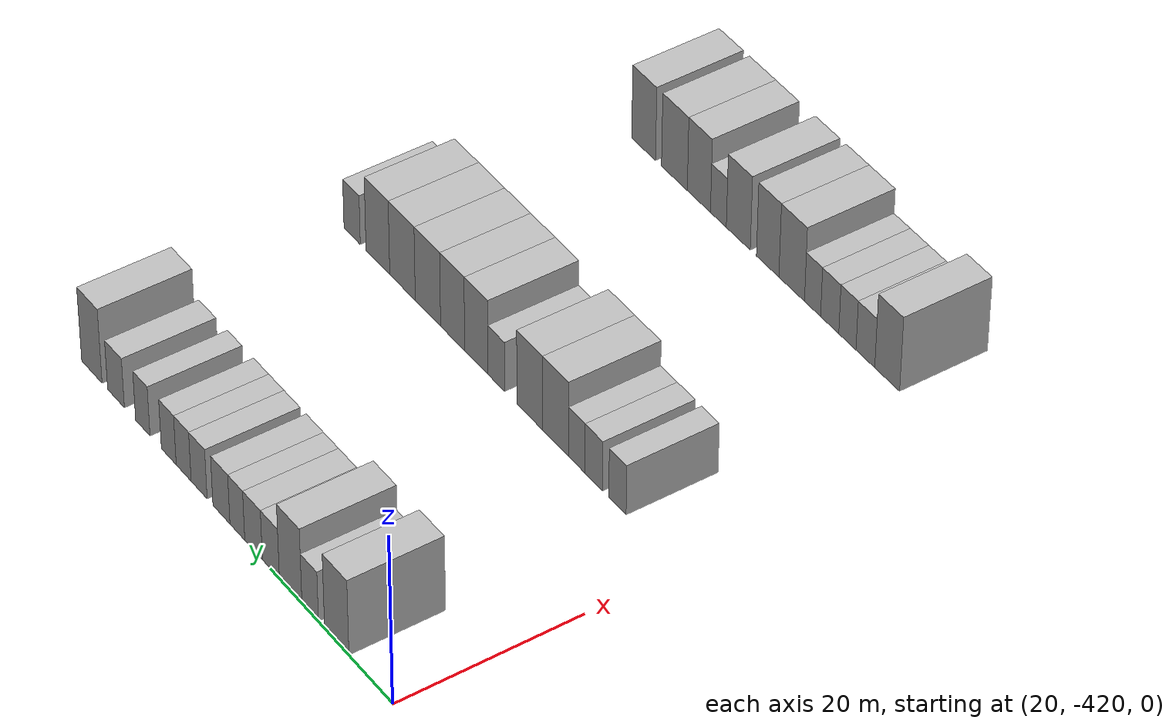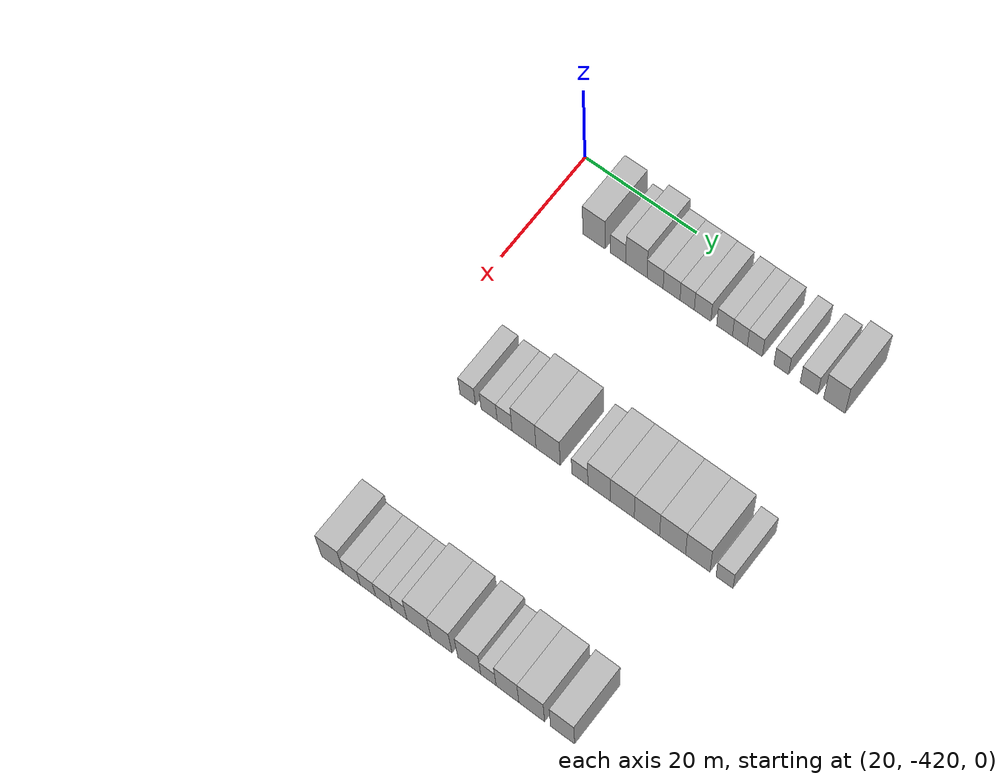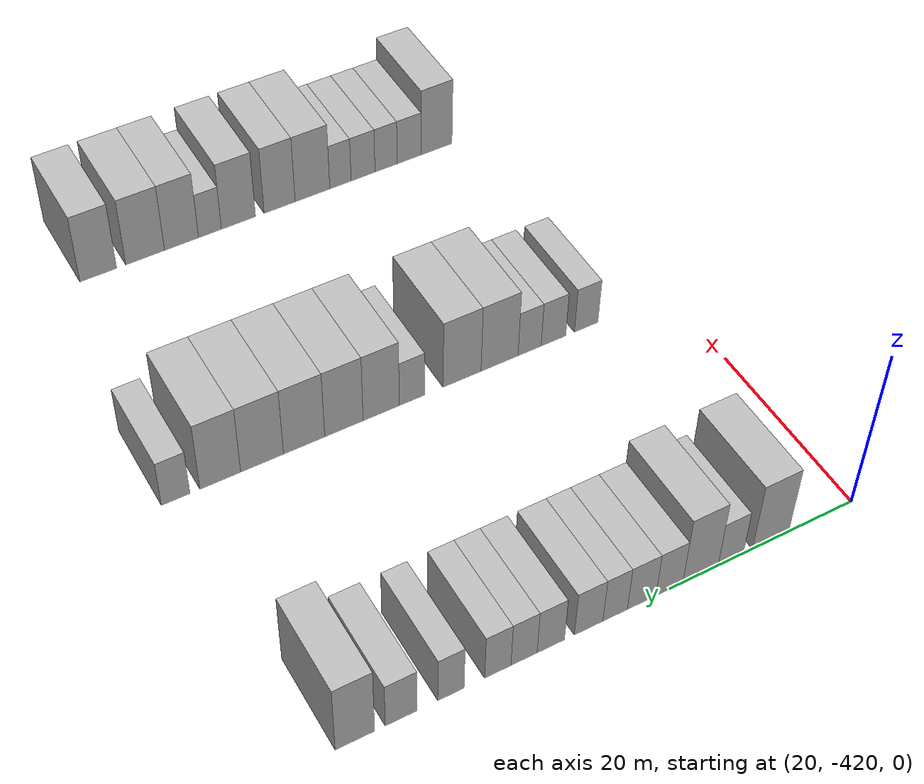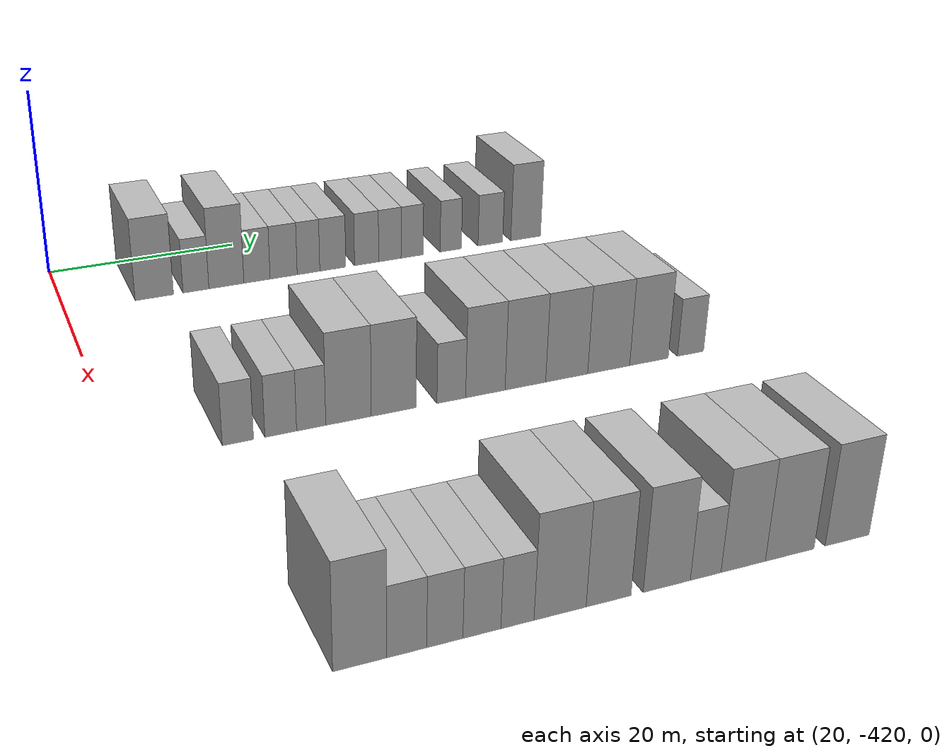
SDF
<sdf version="1.6">
 <world name="default">
  <model name="building_15">
   <static>1</static>
   <pose>25.0000 -410.9005 0 0.000000 0.000000 0.000000</pose>
   <link name="link">
    <pose>0 0 4.50 0 0 0</pose>
    <collision name="collision"><geometry><box><size>10.0000 3.9791 9.0000</size></box></geometry></collision>
    <visual name="visual">
     <cast_shadows>0</cast_shadows>
     <geometry><box><size>10.0000 3.9791 9.0000</size></box></geometry>
     <material>
      <script>
       <uri>model://HANNAS_wall/materials/scripts</uri>
       <uri>model://HANNAS_wall/materials/textures</uri>
       <name>vrc/HANNAS_wall</name>
      </script>
     </material>
    </visual>
   </link>
  </model>
  <model name="building_16">
   <static>1</static>
   <pose>25.0000 -406.5454 0 0.000000 0.000000 0.000000</pose>
   <link name="link">
    <pose>0 0 3.00 0 0 0</pose>
    <collision name="collision"><geometry><box><size>10.0000 2.7313 6.0000</size></box></geometry></collision>
    <visual name="visual">
     <cast_shadows>0</cast_shadows>
     <geometry><box><size>10.0000 2.7313 6.0000</size></box></geometry>
     <material>
      <script>
       <uri>model://HANNAS_wall/materials/scripts</uri>
       <uri>model://HANNAS_wall/materials/textures</uri>
       <name>vrc/HANNAS_wall</name>
      </script>
     </material>
    </visual>
   </link>
  </model>
  <model name="building_17">
   <static>1</static>
   <pose>25.0000 -403.3031 0 0.000000 0.000000 0.000000</pose>
   <link name="link">
    <pose>0 0 4.50 0 0 0</pose>
    <collision name="collision"><geometry><box><size>10.0000 3.7533 9.0000</size></box></geometry></collision>
    <visual name="visual">
     <cast_shadows>0</cast_shadows>
     <geometry><box><size>10.0000 3.7533 9.0000</size></box></geometry>
     <material>
      <script>
       <uri>model://HANNAS_wall/materials/scripts</uri>
       <uri>model://HANNAS_wall/materials/textures</uri>
       <name>vrc/HANNAS_wall</name>
      </script>
     </material>
    </visual>
   </link>
  </model>
  <model name="building_18">
   <static>1</static>
   <pose>25.0000 -400.0018 0 0.000000 0.000000 0.000000</pose>
   <link name="link">
    <pose>0 0 3.00 0 0 0</pose>
    <collision name="collision"><geometry><box><size>10.0000 2.8493 6.0000</size></box></geometry></collision>
    <visual name="visual">
     <cast_shadows>0</cast_shadows>
     <geometry><box><size>10.0000 2.8493 6.0000</size></box></geometry>
     <material>
      <script>
       <uri>model://HANNAS_wall/materials/scripts</uri>
       <uri>model://HANNAS_wall/materials/textures</uri>
       <name>vrc/HANNAS_wall</name>
      </script>
     </material>
    </visual>
   </link>
  </model>
  <model name="building_19">
   <static>1</static>
   <pose>25.0000 -397.0880 0 0.000000 0.000000 0.000000</pose>
   <link name="link">
    <pose>0 0 3.00 0 0 0</pose>
    <collision name="collision"><geometry><box><size>10.0000 2.9783 6.0000</size></box></geometry></collision>
    <visual name="visual">
     <cast_shadows>0</cast_shadows>
     <geometry><box><size>10.0000 2.9783 6.0000</size></box></geometry>
     <material>
      <script>
       <uri>model://HANNAS_wall/materials/scripts</uri>
       <uri>model://HANNAS_wall/materials/textures</uri>
       <name>vrc/HANNAS_wall</name>
      </script>
     </material>
    </visual>
   </link>
  </model>
  <model name="building_20">
   <static>1</static>
   <pose>25.0000 -394.3391 0 0.000000 0.000000 0.000000</pose>
   <link name="link">
    <pose>0 0 3.00 0 0 0</pose>
    <collision name="collision"><geometry><box><size>10.0000 2.5194 6.0000</size></box></geometry></collision>
    <visual name="visual">
     <cast_shadows>0</cast_shadows>
     <geometry><box><size>10.0000 2.5194 6.0000</size></box></geometry>
     <material>
      <script>
       <uri>model://HANNAS_wall/materials/scripts</uri>
       <uri>model://HANNAS_wall/materials/textures</uri>
       <name>vrc/HANNAS_wall</name>
      </script>
     </material>
    </visual>
   </link>
  </model>
  <model name="building_21">
   <static>1</static>
   <pose>25.0000 -391.6232 0 0.000000 0.000000 0.000000</pose>
   <link name="link">
    <pose>0 0 3.00 0 0 0</pose>
    <collision name="collision"><geometry><box><size>10.0000 2.9125 6.0000</size></box></geometry></collision>
    <visual name="visual">
     <cast_shadows>0</cast_shadows>
     <geometry><box><size>10.0000 2.9125 6.0000</size></box></geometry>
     <material>
      <script>
       <uri>model://HANNAS_wall/materials/scripts</uri>
       <uri>model://HANNAS_wall/materials/textures</uri>
       <name>vrc/HANNAS_wall</name>
      </script>
     </material>
    </visual>
   </link>
  </model>
  <model name="building_22">
   <static>1</static>
   <pose>25.0000 -387.7908 0 0.000000 0.000000 0.000000</pose>
   <link name="link">
    <pose>0 0 3.00 0 0 0</pose>
    <collision name="collision"><geometry><box><size>10.0000 2.7523 6.0000</size></box></geometry></collision>
    <visual name="visual">
     <cast_shadows>0</cast_shadows>
     <geometry><box><size>10.0000 2.7523 6.0000</size></box></geometry>
     <material>
      <script>
       <uri>model://HANNAS_wall/materials/scripts</uri>
       <uri>model://HANNAS_wall/materials/textures</uri>
       <name>vrc/HANNAS_wall</name>
      </script>
     </material>
    </visual>
   </link>
  </model>
  <model name="building_23">
   <static>1</static>
   <pose>25.0000 -385.1148 0 0.000000 0.000000 0.000000</pose>
   <link name="link">
    <pose>0 0 3.00 0 0 0</pose>
    <collision name="collision"><geometry><box><size>10.0000 2.5996 6.0000</size></box></geometry></collision>
    <visual name="visual">
     <cast_shadows>0</cast_shadows>
     <geometry><box><size>10.0000 2.5996 6.0000</size></box></geometry>
     <material>
      <script>
       <uri>model://HANNAS_wall/materials/scripts</uri>
       <uri>model://HANNAS_wall/materials/textures</uri>
       <name>vrc/HANNAS_wall</name>
      </script>
     </material>
    </visual>
   </link>
  </model>
  <model name="building_24">
   <static>1</static>
   <pose>25.0000 -382.5200 0 0.000000 0.000000 0.000000</pose>
   <link name="link">
    <pose>0 0 3.00 0 0 0</pose>
    <collision name="collision"><geometry><box><size>10.0000 2.5900 6.0000</size></box></geometry></collision>
    <visual name="visual">
     <cast_shadows>0</cast_shadows>
     <geometry><box><size>10.0000 2.5900 6.0000</size></box></geometry>
     <material>
      <script>
       <uri>model://HANNAS_wall/materials/scripts</uri>
       <uri>model://HANNAS_wall/materials/textures</uri>
       <name>vrc/HANNAS_wall</name>
      </script>
     </material>
    </visual>
   </link>
  </model>
  <model name="building_25">
   <static>1</static>
   <pose>25.0000 -377.9569 0 0.000000 0.000000 0.000000</pose>
   <link name="link">
    <pose>0 0 3.00 0 0 0</pose>
    <collision name="collision"><geometry><box><size>10.0000 2.5362 6.0000</size></box></geometry></collision>
    <visual name="visual">
     <cast_shadows>0</cast_shadows>
     <geometry><box><size>10.0000 2.5362 6.0000</size></box></geometry>
     <material>
      <script>
       <uri>model://HANNAS_wall/materials/scripts</uri>
       <uri>model://HANNAS_wall/materials/textures</uri>
       <name>vrc/HANNAS_wall</name>
      </script>
     </material>
    </visual>
   </link>
  </model>
  <model name="building_26">
   <static>1</static>
   <pose>25.0000 -373.1911 0 0.000000 0.000000 0.000000</pose>
   <link name="link">
    <pose>0 0 3.00 0 0 0</pose>
    <collision name="collision"><geometry><box><size>10.0000 2.9954 6.0000</size></box></geometry></collision>
    <visual name="visual">
     <cast_shadows>0</cast_shadows>
     <geometry><box><size>10.0000 2.9954 6.0000</size></box></geometry>
     <material>
      <script>
       <uri>model://HANNAS_wall/materials/scripts</uri>
       <uri>model://HANNAS_wall/materials/textures</uri>
       <name>vrc/HANNAS_wall</name>
      </script>
     </material>
    </visual>
   </link>
  </model>
  <model name="building_27">
   <static>1</static>
   <pose>25.0000 -368.8588 0 0.000000 0.000000 0.000000</pose>
   <link name="link">
    <pose>0 0 4.50 0 0 0</pose>
    <collision name="collision"><geometry><box><size>10.0000 3.6692 9.0000</size></box></geometry></collision>
    <visual name="visual">
     <cast_shadows>0</cast_shadows>
     <geometry><box><size>10.0000 3.6692 9.0000</size></box></geometry>
     <material>
      <script>
       <uri>model://HANNAS_wall/materials/scripts</uri>
       <uri>model://HANNAS_wall/materials/textures</uri>
       <name>vrc/HANNAS_wall</name>
      </script>
     </material>
    </visual>
   </link>
  </model>
  <model name="building_252">
   <static>1</static>
   <pose>55.0000 -410.2727 0 0.000000 0.000000 0.000000</pose>
   <link name="link">
    <pose>0 0 3.00 0 0 0</pose>
    <collision name="collision"><geometry><box><size>10.0000 2.7428 6.0000</size></box></geometry></collision>
    <visual name="visual">
     <cast_shadows>0</cast_shadows>
     <geometry><box><size>10.0000 2.7428 6.0000</size></box></geometry>
     <material>
      <script>
       <uri>model://HANNAS_wall/materials/scripts</uri>
       <uri>model://HANNAS_wall/materials/textures</uri>
       <name>vrc/HANNAS_wall</name>
      </script>
     </material>
    </visual>
   </link>
  </model>
  <model name="building_253">
   <static>1</static>
   <pose>55.0000 -406.4857 0 0.000000 0.000000 0.000000</pose>
   <link name="link">
    <pose>0 0 3.00 0 0 0</pose>
    <collision name="collision"><geometry><box><size>10.0000 2.8313 6.0000</size></box></geometry></collision>
    <visual name="visual">
     <cast_shadows>0</cast_shadows>
     <geometry><box><size>10.0000 2.8313 6.0000</size></box></geometry>
     <material>
      <script>
       <uri>model://HANNAS_wall/materials/scripts</uri>
       <uri>model://HANNAS_wall/materials/textures</uri>
       <name>vrc/HANNAS_wall</name>
      </script>
     </material>
    </visual>
   </link>
  </model>
  <model name="building_254">
   <static>1</static>
   <pose>55.0000 -403.7462 0 0.000000 0.000000 0.000000</pose>
   <link name="link">
    <pose>0 0 3.00 0 0 0</pose>
    <collision name="collision"><geometry><box><size>10.0000 2.6476 6.0000</size></box></geometry></collision>
    <visual name="visual">
     <cast_shadows>0</cast_shadows>
     <geometry><box><size>10.0000 2.6476 6.0000</size></box></geometry>
     <material>
      <script>
       <uri>model://HANNAS_wall/materials/scripts</uri>
       <uri>model://HANNAS_wall/materials/textures</uri>
       <name>vrc/HANNAS_wall</name>
      </script>
     </material>
    </visual>
   </link>
  </model>
  <model name="building_255">
   <static>1</static>
   <pose>55.0000 -400.3311 0 0.000000 0.000000 0.000000</pose>
   <link name="link">
    <pose>0 0 4.50 0 0 0</pose>
    <collision name="collision"><geometry><box><size>10.0000 4.1827 9.0000</size></box></geometry></collision>
    <visual name="visual">
     <cast_shadows>0</cast_shadows>
     <geometry><box><size>10.0000 4.1827 9.0000</size></box></geometry>
     <material>
      <script>
       <uri>model://HANNAS_wall/materials/scripts</uri>
       <uri>model://HANNAS_wall/materials/textures</uri>
       <name>vrc/HANNAS_wall</name>
      </script>
     </material>
    </visual>
   </link>
  </model>
  <model name="building_256">
   <static>1</static>
   <pose>55.0000 -396.1263 0 0.000000 0.000000 0.000000</pose>
   <link name="link">
    <pose>0 0 4.50 0 0 0</pose>
    <collision name="collision"><geometry><box><size>10.0000 4.2268 9.0000</size></box></geometry></collision>
    <visual name="visual">
     <cast_shadows>0</cast_shadows>
     <geometry><box><size>10.0000 4.2268 9.0000</size></box></geometry>
     <material>
      <script>
       <uri>model://HANNAS_wall/materials/scripts</uri>
       <uri>model://HANNAS_wall/materials/textures</uri>
       <name>vrc/HANNAS_wall</name>
      </script>
     </material>
    </visual>
   </link>
  </model>
  <model name="building_257">
   <static>1</static>
   <pose>55.0000 -390.6225 0 0.000000 0.000000 0.000000</pose>
   <link name="link">
    <pose>0 0 3.00 0 0 0</pose>
    <collision name="collision"><geometry><box><size>10.0000 2.7810 6.0000</size></box></geometry></collision>
    <visual name="visual">
     <cast_shadows>0</cast_shadows>
     <geometry><box><size>10.0000 2.7810 6.0000</size></box></geometry>
     <material>
      <script>
       <uri>model://HANNAS_wall/materials/scripts</uri>
       <uri>model://HANNAS_wall/materials/textures</uri>
       <name>vrc/HANNAS_wall</name>
      </script>
     </material>
    </visual>
   </link>
  </model>
  <model name="building_258">
   <static>1</static>
   <pose>55.0000 -387.2879 0 0.000000 0.000000 0.000000</pose>
   <link name="link">
    <pose>0 0 4.50 0 0 0</pose>
    <collision name="collision"><geometry><box><size>10.0000 3.8882 9.0000</size></box></geometry></collision>
    <visual name="visual">
     <cast_shadows>0</cast_shadows>
     <geometry><box><size>10.0000 3.8882 9.0000</size></box></geometry>
     <material>
      <script>
       <uri>model://HANNAS_wall/materials/scripts</uri>
       <uri>model://HANNAS_wall/materials/textures</uri>
       <name>vrc/HANNAS_wall</name>
      </script>
     </material>
    </visual>
   </link>
  </model>
  <model name="building_259">
   <static>1</static>
   <pose>55.0000 -383.3052 0 0.000000 0.000000 0.000000</pose>
   <link name="link">
    <pose>0 0 4.50 0 0 0</pose>
    <collision name="collision"><geometry><box><size>10.0000 4.0772 9.0000</size></box></geometry></collision>
    <visual name="visual">
     <cast_shadows>0</cast_shadows>
     <geometry><box><size>10.0000 4.0772 9.0000</size></box></geometry>
     <material>
      <script>
       <uri>model://HANNAS_wall/materials/scripts</uri>
       <uri>model://HANNAS_wall/materials/textures</uri>
       <name>vrc/HANNAS_wall</name>
      </script>
     </material>
    </visual>
   </link>
  </model>
  <model name="building_260">
   <static>1</static>
   <pose>55.0000 -379.1093 0 0.000000 0.000000 0.000000</pose>
   <link name="link">
    <pose>0 0 4.50 0 0 0</pose>
    <collision name="collision"><geometry><box><size>10.0000 4.3146 9.0000</size></box></geometry></collision>
    <visual name="visual">
     <cast_shadows>0</cast_shadows>
     <geometry><box><size>10.0000 4.3146 9.0000</size></box></geometry>
     <material>
      <script>
       <uri>model://HANNAS_wall/materials/scripts</uri>
       <uri>model://HANNAS_wall/materials/textures</uri>
       <name>vrc/HANNAS_wall</name>
      </script>
     </material>
    </visual>
   </link>
  </model>
  <model name="building_261">
   <static>1</static>
   <pose>55.0000 -374.7518 0 0.000000 0.000000 0.000000</pose>
   <link name="link">
    <pose>0 0 4.50 0 0 0</pose>
    <collision name="collision"><geometry><box><size>10.0000 4.4004 9.0000</size></box></geometry></collision>
    <visual name="visual">
     <cast_shadows>0</cast_shadows>
     <geometry><box><size>10.0000 4.4004 9.0000</size></box></geometry>
     <material>
      <script>
       <uri>model://HANNAS_wall/materials/scripts</uri>
       <uri>model://HANNAS_wall/materials/textures</uri>
       <name>vrc/HANNAS_wall</name>
      </script>
     </material>
    </visual>
   </link>
  </model>
  <model name="building_262">
   <static>1</static>
   <pose>55.0000 -370.4875 0 0.000000 0.000000 0.000000</pose>
   <link name="link">
    <pose>0 0 4.50 0 0 0</pose>
    <collision name="collision"><geometry><box><size>10.0000 4.1281 9.0000</size></box></geometry></collision>
    <visual name="visual">
     <cast_shadows>0</cast_shadows>
     <geometry><box><size>10.0000 4.1281 9.0000</size></box></geometry>
     <material>
      <script>
       <uri>model://HANNAS_wall/materials/scripts</uri>
       <uri>model://HANNAS_wall/materials/textures</uri>
       <name>vrc/HANNAS_wall</name>
      </script>
     </material>
    </visual>
   </link>
  </model>
  <model name="building_263">
   <static>1</static>
   <pose>55.0000 -365.9966 0 0.000000 0.000000 0.000000</pose>
   <link name="link">
    <pose>0 0 3.00 0 0 0</pose>
    <collision name="collision"><geometry><box><size>10.0000 2.8538 6.0000</size></box></geometry></collision>
    <visual name="visual">
     <cast_shadows>0</cast_shadows>
     <geometry><box><size>10.0000 2.8538 6.0000</size></box></geometry>
     <material>
      <script>
       <uri>model://HANNAS_wall/materials/scripts</uri>
       <uri>model://HANNAS_wall/materials/textures</uri>
       <name>vrc/HANNAS_wall</name>
      </script>
     </material>
    </visual>
   </link>
  </model>
  <model name="building_491">
   <static>1</static>
   <pose>85.0000 -410.0346 0 0.000000 0.000000 0.000000</pose>
   <link name="link">
    <pose>0 0 4.50 0 0 0</pose>
    <collision name="collision"><geometry><box><size>10.0000 3.8423 9.0000</size></box></geometry></collision>
    <visual name="visual">
     <cast_shadows>0</cast_shadows>
     <geometry><box><size>10.0000 3.8423 9.0000</size></box></geometry>
     <material>
      <script>
       <uri>model://HANNAS_wall/materials/scripts</uri>
       <uri>model://HANNAS_wall/materials/textures</uri>
       <name>vrc/HANNAS_wall</name>
      </script>
     </material>
    </visual>
   </link>
  </model>
  <model name="building_492">
   <static>1</static>
   <pose>85.0000 -406.6505 0 0.000000 0.000000 0.000000</pose>
   <link name="link">
    <pose>0 0 3.00 0 0 0</pose>
    <collision name="collision"><geometry><box><size>10.0000 2.9257 6.0000</size></box></geometry></collision>
    <visual name="visual">
     <cast_shadows>0</cast_shadows>
     <geometry><box><size>10.0000 2.9257 6.0000</size></box></geometry>
     <material>
      <script>
       <uri>model://HANNAS_wall/materials/scripts</uri>
       <uri>model://HANNAS_wall/materials/textures</uri>
       <name>vrc/HANNAS_wall</name>
      </script>
     </material>
    </visual>
   </link>
  </model>
  <model name="building_493">
   <static>1</static>
   <pose>85.0000 -403.8406 0 0.000000 0.000000 0.000000</pose>
   <link name="link">
    <pose>0 0 3.00 0 0 0</pose>
    <collision name="collision"><geometry><box><size>10.0000 2.6940 6.0000</size></box></geometry></collision>
    <visual name="visual">
     <cast_shadows>0</cast_shadows>
     <geometry><box><size>10.0000 2.6940 6.0000</size></box></geometry>
     <material>
      <script>
       <uri>model://HANNAS_wall/materials/scripts</uri>
       <uri>model://HANNAS_wall/materials/textures</uri>
       <name>vrc/HANNAS_wall</name>
      </script>
     </material>
    </visual>
   </link>
  </model>
  <model name="building_494">
   <static>1</static>
   <pose>85.0000 -401.0559 0 0.000000 0.000000 0.000000</pose>
   <link name="link">
    <pose>0 0 3.00 0 0 0</pose>
    <collision name="collision"><geometry><box><size>10.0000 2.8754 6.0000</size></box></geometry></collision>
    <visual name="visual">
     <cast_shadows>0</cast_shadows>
     <geometry><box><size>10.0000 2.8754 6.0000</size></box></geometry>
     <material>
      <script>
       <uri>model://HANNAS_wall/materials/scripts</uri>
       <uri>model://HANNAS_wall/materials/textures</uri>
       <name>vrc/HANNAS_wall</name>
      </script>
     </material>
    </visual>
   </link>
  </model>
  <model name="building_495">
   <static>1</static>
   <pose>85.0000 -398.3424 0 0.000000 0.000000 0.000000</pose>
   <link name="link">
    <pose>0 0 3.00 0 0 0</pose>
    <collision name="collision"><geometry><box><size>10.0000 2.5516 6.0000</size></box></geometry></collision>
    <visual name="visual">
     <cast_shadows>0</cast_shadows>
     <geometry><box><size>10.0000 2.5516 6.0000</size></box></geometry>
     <material>
      <script>
       <uri>model://HANNAS_wall/materials/scripts</uri>
       <uri>model://HANNAS_wall/materials/textures</uri>
       <name>vrc/HANNAS_wall</name>
      </script>
     </material>
    </visual>
   </link>
  </model>
  <model name="building_496">
   <static>1</static>
   <pose>85.0000 -395.0172 0 0.000000 0.000000 0.000000</pose>
   <link name="link">
    <pose>0 0 4.50 0 0 0</pose>
    <collision name="collision"><geometry><box><size>10.0000 4.0988 9.0000</size></box></geometry></collision>
    <visual name="visual">
     <cast_shadows>0</cast_shadows>
     <geometry><box><size>10.0000 4.0988 9.0000</size></box></geometry>
     <material>
      <script>
       <uri>model://HANNAS_wall/materials/scripts</uri>
       <uri>model://HANNAS_wall/materials/textures</uri>
       <name>vrc/HANNAS_wall</name>
      </script>
     </material>
    </visual>
   </link>
  </model>
  <model name="building_497">
   <static>1</static>
   <pose>85.0000 -391.1577 0 0.000000 0.000000 0.000000</pose>
   <link name="link">
    <pose>0 0 4.50 0 0 0</pose>
    <collision name="collision"><geometry><box><size>10.0000 3.6202 9.0000</size></box></geometry></collision>
    <visual name="visual">
     <cast_shadows>0</cast_shadows>
     <geometry><box><size>10.0000 3.6202 9.0000</size></box></geometry>
     <material>
      <script>
       <uri>model://HANNAS_wall/materials/scripts</uri>
       <uri>model://HANNAS_wall/materials/textures</uri>
       <name>vrc/HANNAS_wall</name>
      </script>
     </material>
    </visual>
   </link>
  </model>
  <model name="building_498">
   <static>1</static>
   <pose>85.0000 -386.3912 0 0.000000 0.000000 0.000000</pose>
   <link name="link">
    <pose>0 0 4.50 0 0 0</pose>
    <collision name="collision"><geometry><box><size>10.0000 3.9129 9.0000</size></box></geometry></collision>
    <visual name="visual">
     <cast_shadows>0</cast_shadows>
     <geometry><box><size>10.0000 3.9129 9.0000</size></box></geometry>
     <material>
      <script>
       <uri>model://HANNAS_wall/materials/scripts</uri>
       <uri>model://HANNAS_wall/materials/textures</uri>
       <name>vrc/HANNAS_wall</name>
      </script>
     </material>
    </visual>
   </link>
  </model>
  <model name="building_499">
   <static>1</static>
   <pose>85.0000 -383.1345 0 0.000000 0.000000 0.000000</pose>
   <link name="link">
    <pose>0 0 3.00 0 0 0</pose>
    <collision name="collision"><geometry><box><size>10.0000 2.6005 6.0000</size></box></geometry></collision>
    <visual name="visual">
     <cast_shadows>0</cast_shadows>
     <geometry><box><size>10.0000 2.6005 6.0000</size></box></geometry>
     <material>
      <script>
       <uri>model://HANNAS_wall/materials/scripts</uri>
       <uri>model://HANNAS_wall/materials/textures</uri>
       <name>vrc/HANNAS_wall</name>
      </script>
     </material>
    </visual>
   </link>
  </model>
  <model name="building_500">
   <static>1</static>
   <pose>85.0000 -379.9151 0 0.000000 0.000000 0.000000</pose>
   <link name="link">
    <pose>0 0 4.50 0 0 0</pose>
    <collision name="collision"><geometry><box><size>10.0000 3.8381 9.0000</size></box></geometry></collision>
    <visual name="visual">
     <cast_shadows>0</cast_shadows>
     <geometry><box><size>10.0000 3.8381 9.0000</size></box></geometry>
     <material>
      <script>
       <uri>model://HANNAS_wall/materials/scripts</uri>
       <uri>model://HANNAS_wall/materials/textures</uri>
       <name>vrc/HANNAS_wall</name>
      </script>
     </material>
    </visual>
   </link>
  </model>
  <model name="building_501">
   <static>1</static>
   <pose>85.0000 -375.8425 0 0.000000 0.000000 0.000000</pose>
   <link name="link">
    <pose>0 0 4.50 0 0 0</pose>
    <collision name="collision"><geometry><box><size>10.0000 4.3072 9.0000</size></box></geometry></collision>
    <visual name="visual">
     <cast_shadows>0</cast_shadows>
     <geometry><box><size>10.0000 4.3072 9.0000</size></box></geometry>
     <material>
      <script>
       <uri>model://HANNAS_wall/materials/scripts</uri>
       <uri>model://HANNAS_wall/materials/textures</uri>
       <name>vrc/HANNAS_wall</name>
      </script>
     </material>
    </visual>
   </link>
  </model>
  <model name="building_502">
   <static>1</static>
   <pose>85.0000 -370.6840 0 0.000000 0.000000 0.000000</pose>
   <link name="link">
    <pose>0 0 4.50 0 0 0</pose>
    <collision name="collision"><geometry><box><size>10.0000 4.0098 9.0000</size></box></geometry></collision>
    <visual name="visual">
     <cast_shadows>0</cast_shadows>
     <geometry><box><size>10.0000 4.0098 9.0000</size></box></geometry>
     <material>
      <script>
       <uri>model://HANNAS_wall/materials/scripts</uri>
       <uri>model://HANNAS_wall/materials/textures</uri>
       <name>vrc/HANNAS_wall</name>
      </script>
     </material>
    </visual>
   </link>
  </model>
 </world>
</sdf>
